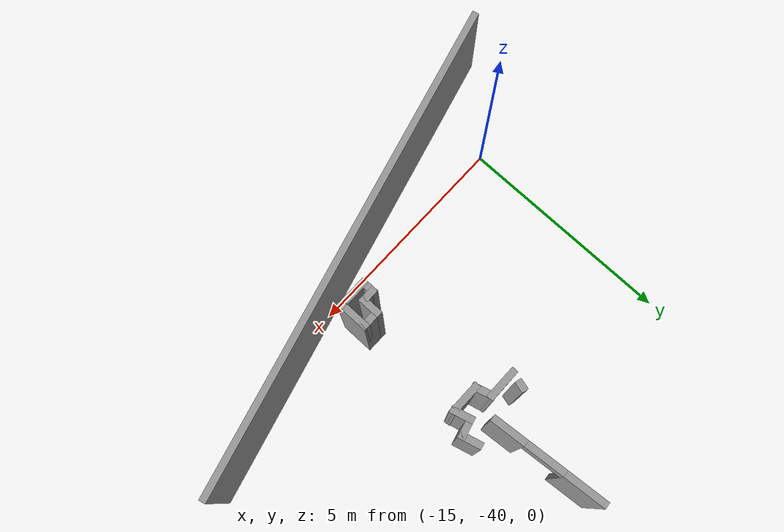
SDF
<sdf version="1.6">
 <model name="car_parking_underground_big_1">
  <pose>-9.36123 -7.37411 0 0 -0 0</pose>
  <link name="Wall_736">
   <collision name="Wall_736_Collision">
    <geometry><box><size>0.25 0.15 2.5</size></box></geometry>
    <pose>0 0 1.25 0 -0 0</pose>
   </collision>
   <visual name="Wall_736_Visual">
    <pose>0 0 1.25 0 -0 0</pose>
    <geometry><box><size>0.25 0.15 2.5</size></box></geometry>
    <material>
     <script><uri>file://media/materials/scripts/gazebo.material</uri><name>Gazebo/Grey</name></script>
     <ambient>1 1 1 1</ambient>
    </material>
    <meta><layer>0</layer></meta>
   </visual>
   <pose>-1.94848 -28.54 0 0 -0 -1.8326</pose>
  </link>
  <link name="Wall_743">
   <collision name="Wall_743_Collision">
    <geometry><box><size>0.75 0.15 2.5</size></box></geometry>
    <pose>0 0 1.25 0 -0 0</pose>
   </collision>
   <visual name="Wall_743_Visual">
    <pose>0 0 1.25 0 -0 0</pose>
    <geometry><box><size>0.75 0.15 2.5</size></box></geometry>
    <material>
     <script><uri>file://media/materials/scripts/gazebo.material</uri><name>Gazebo/Grey</name></script>
     <ambient>1 1 1 1</ambient>
    </material>
    <meta><layer>0</layer></meta>
   </visual>
   <pose>-1.72613 -28.8298 0 0 -0 0</pose>
  </link>
  <link name="Wall_744">
   <collision name="Wall_744_Collision">
    <geometry><box><size>0.5 0.15 2.5</size></box></geometry>
    <pose>0 0 1.25 0 -0 0</pose>
   </collision>
   <visual name="Wall_744_Visual">
    <pose>0 0 1.25 0 -0 0</pose>
    <geometry><box><size>0.5 0.15 2.5</size></box></geometry>
    <material>
     <script><uri>file://media/materials/scripts/gazebo.material</uri><name>Gazebo/Grey</name></script>
     <ambient>1 1 1 1</ambient>
    </material>
    <meta><layer>0</layer></meta>
   </visual>
   <pose>-1.38083 -28.9988 0 0 -0 -1.309</pose>
  </link>
  <link name="Wall_745">
   <collision name="Wall_745_Collision">
    <geometry><box><size>0.75 0.15 2.5</size></box></geometry>
    <pose>0 0 1.25 0 -0 0</pose>
   </collision>
   <visual name="Wall_745_Visual">
    <pose>0 0 1.25 0 -0 0</pose>
    <geometry><box><size>0.75 0.15 2.5</size></box></geometry>
    <material>
     <script><uri>file://media/materials/scripts/gazebo.material</uri><name>Gazebo/Grey</name></script>
     <ambient>1 1 1 1</ambient>
    </material>
    <meta><layer>0</layer></meta>
   </visual>
   <pose>-1.03554 -29.1678 0 0 -0 0</pose>
  </link>
  <link name="Wall_746">
   <collision name="Wall_746_Collision">
    <geometry><box><size>0.5 0.15 2.5</size></box></geometry>
    <pose>0 0 1.25 0 -0 0</pose>
   </collision>
   <visual name="Wall_746_Visual">
    <pose>0 0 1.25 0 -0 0</pose>
    <geometry><box><size>0.5 0.15 2.5</size></box></geometry>
    <material>
     <script><uri>file://media/materials/scripts/gazebo.material</uri><name>Gazebo/Grey</name></script>
     <ambient>1 1 1 1</ambient>
    </material>
    <meta><layer>0</layer></meta>
   </visual>
   <pose>-0.780833 -28.9988 0 0 -0 1.8326</pose>
  </link>
  <link name="Wall_747">
   <collision name="Wall_747_Collision">
    <geometry><box><size>0.5 0.15 2.5</size></box></geometry>
    <pose>0 0 1.25 0 -0 0</pose>
   </collision>
   <visual name="Wall_747_Visual">
    <pose>0 0 1.25 0 -0 0</pose>
    <geometry><box><size>0.5 0.15 2.5</size></box></geometry>
    <material>
     <script><uri>file://media/materials/scripts/gazebo.material</uri><name>Gazebo/Grey</name></script>
     <ambient>1 1 1 1</ambient>
    </material>
    <meta><layer>0</layer></meta>
   </visual>
   <pose>-0.65709 -28.7845 0 0 -0 0.261799</pose>
  </link>
  <link name="Wall_748">
   <collision name="Wall_748_Collision">
    <geometry><box><size>0.5 0.15 2.5</size></box></geometry>
    <pose>0 0 1.25 0 -0 0</pose>
   </collision>
   <visual name="Wall_748_Visual">
    <pose>0 0 1.25 0 -0 0</pose>
    <geometry><box><size>0.5 0.15 2.5</size></box></geometry>
    <material>
     <script><uri>file://media/materials/scripts/gazebo.material</uri><name>Gazebo/Grey</name></script>
     <ambient>1 1 1 1</ambient>
    </material>
    <meta><layer>0</layer></meta>
   </visual>
   <pose>-0.533346 -28.5701 0 0 -0 1.8326</pose>
  </link>
  <link name="Wall_750">
   <collision name="Wall_750_Collision">
    <geometry><box><size>0.5 0.15 2.5</size></box></geometry>
    <pose>0 0 1.25 0 -0 0</pose>
   </collision>
   <visual name="Wall_750_Visual">
    <pose>0 0 1.25 0 -0 0</pose>
    <geometry><box><size>0.5 0.15 2.5</size></box></geometry>
    <material>
     <script><uri>file://media/materials/scripts/gazebo.material</uri><name>Gazebo/Grey</name></script>
     <ambient>1 1 1 1</ambient>
    </material>
    <meta><layer>0</layer></meta>
   </visual>
   <pose>-0.946835 -31.5295 0 0 -0 0</pose>
  </link>
  <link name="Wall_751">
   <collision name="Wall_751_Collision">
    <geometry><box><size>0.75 0.15 2.5</size></box></geometry>
    <pose>0 0 1.25 0 -0 0</pose>
   </collision>
   <visual name="Wall_751_Visual">
    <pose>0 0 1.25 0 -0 0</pose>
    <geometry><box><size>0.75 0.15 2.5</size></box></geometry>
    <material>
     <script><uri>file://media/materials/scripts/gazebo.material</uri><name>Gazebo/Grey</name></script>
     <ambient>1 1 1 1</ambient>
    </material>
    <meta><layer>0</layer></meta>
   </visual>
   <pose>-0.771834 -31.8295 0 0 -0 -1.5708</pose>
  </link>
  <link name="Wall_752">
   <collision name="Wall_752_Collision">
    <geometry><box><size>0.75 0.15 2.5</size></box></geometry>
    <pose>0 0 1.25 0 -0 0</pose>
   </collision>
   <visual name="Wall_752_Visual">
    <pose>0 0 1.25 0 -0 0</pose>
    <geometry><box><size>0.75 0.15 2.5</size></box></geometry>
    <material>
     <script><uri>file://media/materials/scripts/gazebo.material</uri><name>Gazebo/Grey</name></script>
     <ambient>1 1 1 1</ambient>
    </material>
    <meta><layer>0</layer></meta>
   </visual>
   <pose>-1.07184 -32.1295 0 0 -0 3.14159</pose>
  </link>
  <link name="Wall_753">
   <collision name="Wall_753_Collision">
    <geometry><box><size>0.4 0.15 2.5</size></box></geometry>
    <pose>0 0 1.25 0 -0 0</pose>
   </collision>
   <visual name="Wall_753_Visual">
    <pose>0 0 1.25 0 -0 0</pose>
    <geometry><box><size>0.4 0.15 2.5</size></box></geometry>
    <material>
     <script><uri>file://media/materials/scripts/gazebo.material</uri><name>Gazebo/Grey</name></script>
     <ambient>1 1 1 1</ambient>
    </material>
    <meta><layer>0</layer></meta>
   </visual>
   <pose>-1.37183 -32.0045 0 0 -0 1.5708</pose>
  </link>
  <link name="Wall_754">
   <collision name="Wall_754_Collision">
    <geometry><box><size>0.4 0.15 2.5</size></box></geometry>
    <pose>0 0 1.25 0 -0 0</pose>
   </collision>
   <visual name="Wall_754_Visual">
    <pose>0 0 1.25 0 -0 0</pose>
    <geometry><box><size>0.4 0.15 2.5</size></box></geometry>
    <material>
     <script><uri>file://media/materials/scripts/gazebo.material</uri><name>Gazebo/Grey</name></script>
     <ambient>1 1 1 1</ambient>
    </material>
    <meta><layer>0</layer></meta>
   </visual>
   <pose>-1.24683 -31.8795 0 0 -0 0</pose>
  </link>
  <link name="Wall_755">
   <collision name="Wall_755_Collision">
    <geometry><box><size>0.5 0.15 2.5</size></box></geometry>
    <pose>0 0 1.25 0 -0 0</pose>
   </collision>
   <visual name="Wall_755_Visual">
    <pose>0 0 1.25 0 -0 0</pose>
    <geometry><box><size>0.5 0.15 2.5</size></box></geometry>
    <material>
     <script><uri>file://media/materials/scripts/gazebo.material</uri><name>Gazebo/Grey</name></script>
     <ambient>1 1 1 1</ambient>
    </material>
    <meta><layer>0</layer></meta>
   </visual>
   <pose>-1.12183 -31.7045 0 0 -0 1.5708</pose>
  </link>
  <link name="Wall_794">
   <pose>-1.23989 -27.2348 0 0 -0 -1.48432</pose>
   <visual name="Wall_794_Visual_0">
    <pose>-0.845514 0 1.25 0 -0 0</pose>
    <geometry><box><size>0.946822 0.15 2.5</size></box></geometry>
    <material>
     <script><uri>file://media/materials/scripts/gazebo.material</uri><name>Gazebo/Grey</name></script>
     <ambient>1 1 1 1</ambient>
    </material>
    <meta><layer>0</layer></meta>
   </visual>
   <collision name="Wall_794_Collision_0">
    <geometry><box><size>0.946822 0.15 2.5</size></box></geometry>
    <pose>-0.845514 0 1.25 0 -0 0</pose>
   </collision>
   <visual name="Wall_794_Visual_1">
    <pose>0.923411 0 1.25 0 -0 0</pose>
    <geometry><box><size>0.791028 0.15 2.5</size></box></geometry>
    <material>
     <script><uri>file://media/materials/scripts/gazebo.material</uri><name>Gazebo/Grey</name></script>
     <ambient>1 1 1 1</ambient>
    </material>
    <meta><layer>0</layer></meta>
   </visual>
   <collision name="Wall_794_Collision_1">
    <geometry><box><size>0.791028 0.15 2.5</size></box></geometry>
    <pose>0.923411 0 1.25 0 -0 0</pose>
   </collision>
   <visual name="Wall_794_Visual_2">
    <pose>0.077897 0 2.25 0 -0 0</pose>
    <geometry><box><size>0.9 0.15 0.5</size></box></geometry>
    <material>
     <script><uri>file://media/materials/scripts/gazebo.material</uri><name>Gazebo/Grey</name></script>
     <ambient>1 1 1 1</ambient>
    </material>
    <meta><layer>0</layer></meta>
   </visual>
   <collision name="Wall_794_Collision_2">
    <geometry><box><size>0.9 0.15 0.5</size></box></geometry>
    <pose>0.077897 0 2.25 0 -0 0</pose>
   </collision>
  </link>
  <link name="Wall_85">
   <collision name="Wall_85_Collision">
    <geometry><box><size>11.25 0.15 2.5</size></box></geometry>
    <pose>0 0 1.25 0 -0 0</pose>
   </collision>
   <visual name="Wall_85_Visual">
    <pose>0 0 1.25 0 -0 0</pose>
    <geometry><box><size>11.25 0.15 2.5</size></box></geometry>
    <material>
     <script><uri>file://media/materials/scripts/gazebo.material</uri><name>Gazebo/Grey</name></script>
     <ambient>1 1 1 1</ambient>
    </material>
    <meta><layer>0</layer></meta>
   </visual>
   <pose>-1.76953 -32.9254 0 0 -0 -2.87979</pose>
  </link>
  <static>1</static>
 </model>
</sdf>
